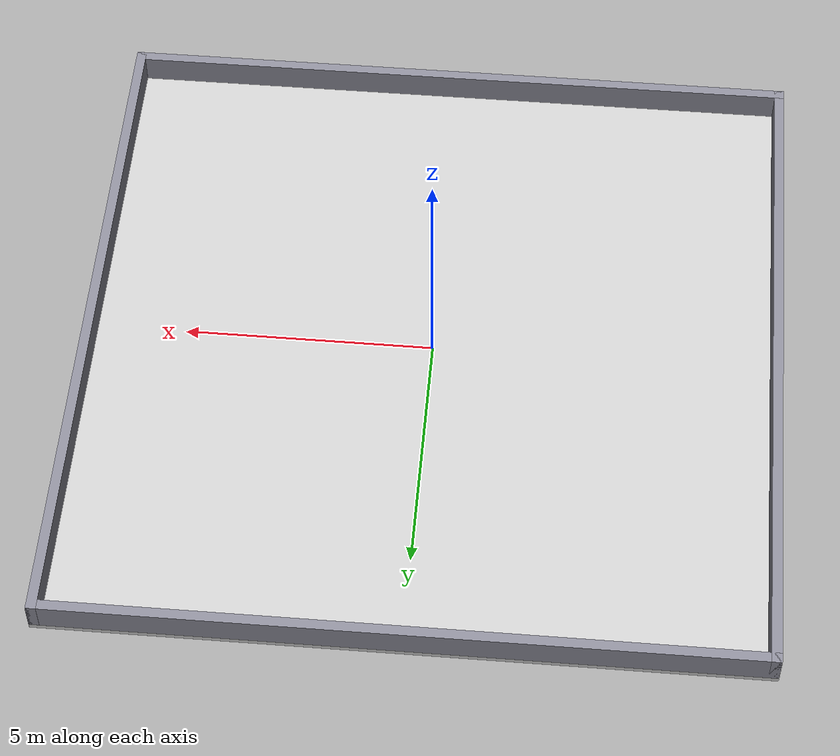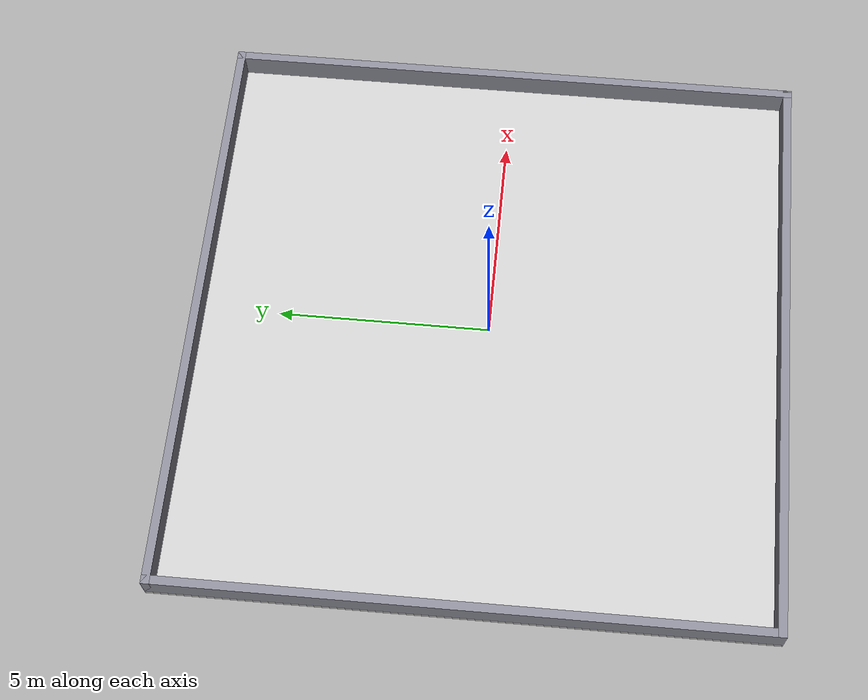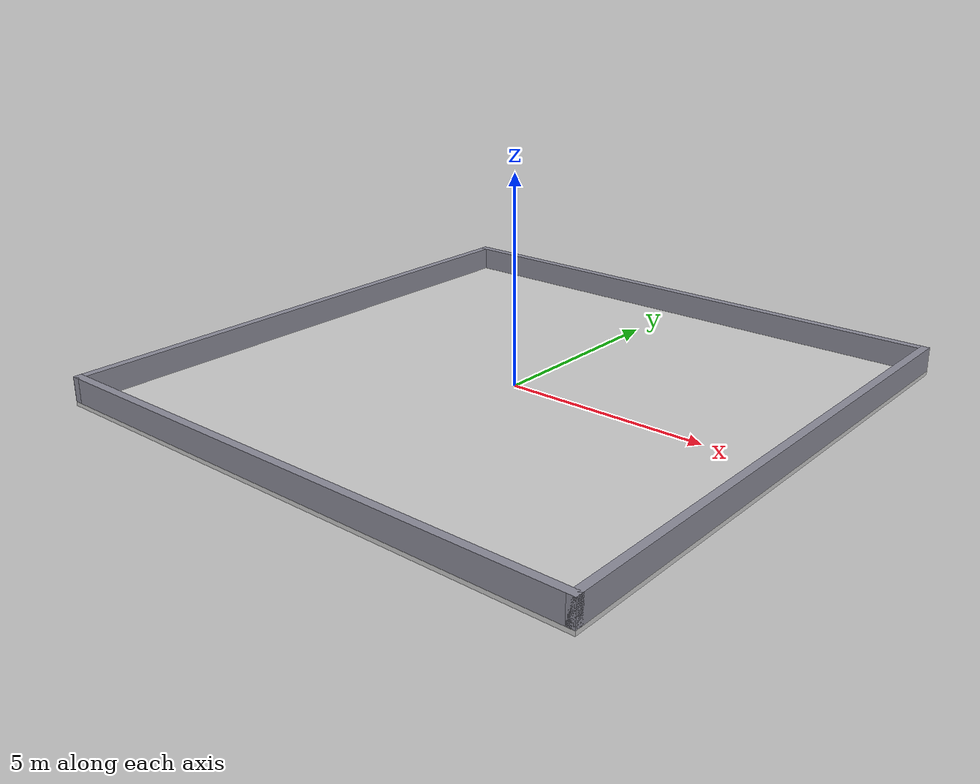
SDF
<?xml version="1.0"?>
<sdf version="1.10">
  <world name="phase1_obstacles">
    <gravity>0 0 -9.8</gravity>

    <plugin filename="gz-sim-physics-system" name="gz::sim::systems::Physics"/>
    <plugin filename="gz-sim-user-commands-system" name="gz::sim::systems::UserCommands"/>
    <plugin filename="gz-sim-scene-broadcaster-system" name="gz::sim::systems::SceneBroadcaster"/>
    <plugin filename="gz-sim-sensors-system" name="gz::sim::systems::Sensors">
      <render_engine>ogre2</render_engine>
    </plugin>

    <scene>
      <ambient>0.7 0.7 0.7 1.0</ambient>
      <background>0.95 0.95 0.98 1.0</background>
    </scene>

    <light name="sun" type="directional">
      <cast_shadows>true</cast_shadows>
      <pose>0 0 10 0 0 0</pose>
      <diffuse>0.9 0.9 0.9 1</diffuse>
      <specular>0.2 0.2 0.2 1</specular>
      <direction>-0.5 0.2 -1</direction>
    </light>

    <model name="floor">
      <static>true</static>
      <link name="floor_link">
        <collision name="floor_collision">
          <geometry>
            <box>
              <size>14 14 0.1</size>
            </box>
          </geometry>
        </collision>
        <visual name="floor_visual">
          <geometry>
            <box>
              <size>14 14 0.1</size>
            </box>
          </geometry>
          <material>
            <ambient>0.8 0.8 0.8 1</ambient>
            <diffuse>0.8 0.8 0.8 1</diffuse>
          </material>
        </visual>
      </link>
      <pose>0 0 -0.05 0 0 0</pose>
    </model>

    <model name="north_wall">
      <static>true</static>
      <link name="north_wall_link">
        <collision name="collision">
          <geometry>
            <box>
              <size>14 0.2 0.6</size>
            </box>
          </geometry>
        </collision>
        <visual name="visual">
          <geometry>
            <box>
              <size>14 0.2 0.6</size>
            </box>
          </geometry>
          <material>
            <ambient>0.55 0.55 0.6 1</ambient>
            <diffuse>0.55 0.55 0.6 1</diffuse>
          </material>
        </visual>
      </link>
      <pose>0 6.9 0.3 0 0 0</pose>
    </model>

    <model name="south_wall">
      <static>true</static>
      <link name="south_wall_link">
        <collision name="collision">
          <geometry>
            <box>
              <size>14 0.2 0.6</size>
            </box>
          </geometry>
        </collision>
        <visual name="visual">
          <geometry>
            <box>
              <size>14 0.2 0.6</size>
            </box>
          </geometry>
          <material>
            <ambient>0.55 0.55 0.6 1</ambient>
            <diffuse>0.55 0.55 0.6 1</diffuse>
          </material>
        </visual>
      </link>
      <pose>0 -6.9 0.3 0 0 0</pose>
    </model>

    <model name="east_wall">
      <static>true</static>
      <link name="east_wall_link">
        <collision name="collision">
          <geometry>
            <box>
              <size>0.2 14 0.6</size>
            </box>
          </geometry>
        </collision>
        <visual name="visual">
          <geometry>
            <box>
              <size>0.2 14 0.6</size>
            </box>
          </geometry>
          <material>
            <ambient>0.55 0.55 0.6 1</ambient>
            <diffuse>0.55 0.55 0.6 1</diffuse>
          </material>
        </visual>
      </link>
      <pose>6.9 0 0.3 0 0 0</pose>
    </model>

    <model name="west_wall">
      <static>true</static>
      <link name="west_wall_link">
        <collision name="collision">
          <geometry>
            <box>
              <size>0.2 14 0.6</size>
            </box>
          </geometry>
        </collision>
        <visual name="visual">
          <geometry>
            <box>
              <size>0.2 14 0.6</size>
            </box>
          </geometry>
          <material>
            <ambient>0.55 0.55 0.6 1</ambient>
            <diffuse>0.55 0.55 0.6 1</diffuse>
          </material>
        </visual>
      </link>
      <pose>-6.9 0 0.3 0 0 0</pose>
    </model>

  </world>
</sdf>
